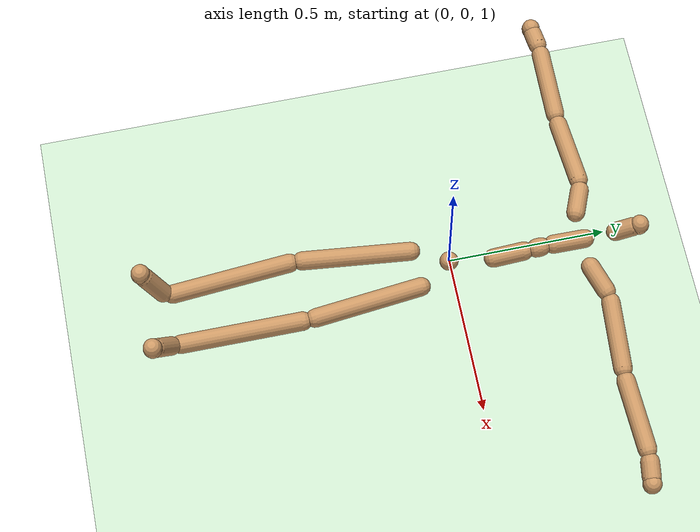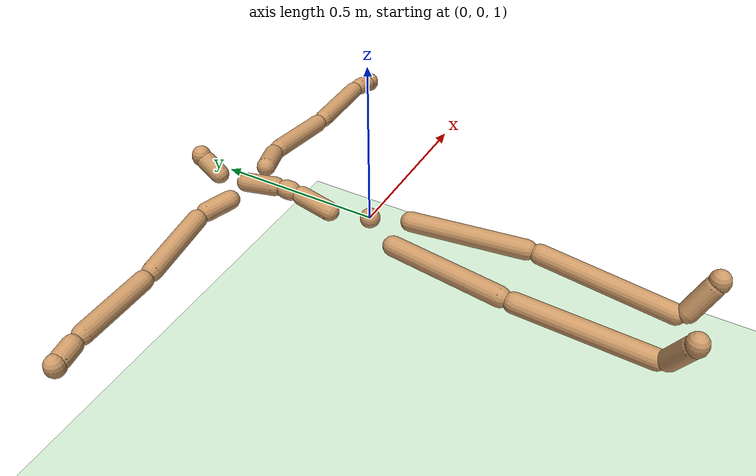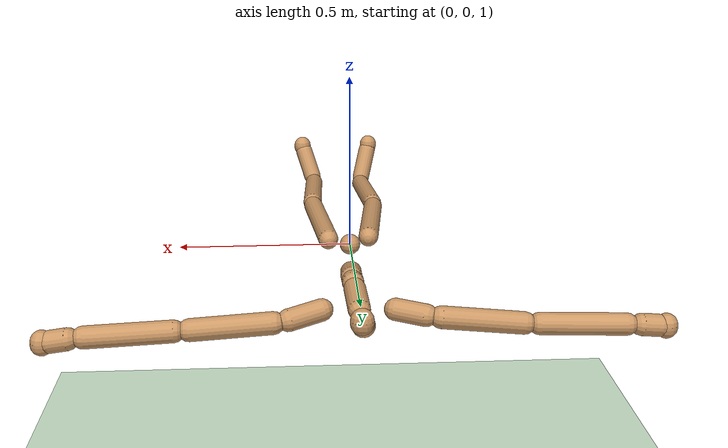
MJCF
<mujoco model="humanoid">
  <compiler angle="degree" inertiafromgeom="true" coordinate="global"/>
  <include file="./common/materials.xml"/>
    <size njmax="8000" nconmax="4000"/>
  <visual>
    <headlight ambient=".4 .4 .4" diffuse=".8 .8 .8" specular="0.1 0.1 0.1"/>
    <map znear=".01"/>
    <quality shadowsize="2048"/>
  </visual>
  <default>
    <joint damping="0.0" armature="0.01" stiffness="0.0" limited="true"/>
    <geom conaffinity="7" condim="1" contype="7" margin="0.001" material="self" rgba="0.8 0.6 .4 1"/>
  </default>
  <statistic extent="3" center="0 0 1"/>
  <option timestep="0.00222222222"/>
  <asset>
    <texture type="skybox" file="./common/sky1.png" gridsize="3 4" gridlayout=".U..LFRB.D.." width="8192" height="8192"/>
    <texture builtin="flat" height="1278" mark="cross" markrgb="1 1 1" name="texgeom" random="0.01" rgb1=".8 .6 .4" rgb2=".8 .6 .4" type="cube" width="127"/>
  </asset>
  <worldbody>
    <light cutoff="100" diffuse="1 1 1" dir="-0 0 -1.3" directional="true" exponent="1" pos="0 0 1.3" specular=".1 .1 .1"/>
    <geom condim="3" friction="1. .1 .1" material="grid" name="floor" pos="0 0 0" rgba=".8 .9 .8 1" size="100 100 .2" type="plane"/>
    <body name="Hips" pos="0.0000 0.0000 1.0000" user="0.0009 -0.0161 0.9768">
      <joint name="Hips" pos="0.0000 0.0000 1.0000" limited="false" type="free" armature="0" damping="0" stiffness="0"/>
      <geom size="0.0300" type="sphere" pos="0.0000 0.0000 1.0000"/>
      <body name="LeftUpLeg" pos="0.0586 -0.0823 0.9823" user="0.1020 -0.4687 0.9904">
        <joint name="LeftUpLeg_z" type="hinge" pos="0.0586 -0.0823 0.9823" axis="0.0000 0.0000 1.0000" range="-180.0000 180.0000"/>
        <joint name="LeftUpLeg_x" type="hinge" pos="0.0586 -0.0823 0.9823" axis="1.0000 0.0000 0.0000" range="-180.0000 180.0000"/>
        <joint name="LeftUpLeg_y" type="hinge" pos="0.0586 -0.0823 0.9823" axis="0.0000 1.0000 0.0000" range="-180.0000 180.0000"/>
        <geom size="0.0300" type="capsule" fromto="0.0608 -0.1022 0.9827 0.0998 -0.4489 0.9900"/>
        <body name="LeftLeg" pos="0.1020 -0.4687 0.9904" user="0.0872 -0.8956 0.9529">
          <joint name="LeftLeg_z" type="hinge" pos="0.1020 -0.4687 0.9904" axis="0.0000 0.0000 1.0000" range="-180.0000 180.0000"/>
          <joint name="LeftLeg_x" type="hinge" pos="0.1020 -0.4687 0.9904" axis="1.0000 0.0000 0.0000" range="-180.0000 180.0000"/>
          <joint name="LeftLeg_y" type="hinge" pos="0.1020 -0.4687 0.9904" axis="0.0000 1.0000 0.0000" range="-180.0000 180.0000"/>
          <geom size="0.0300" type="capsule" fromto="0.1013 -0.4887 0.9886 0.0879 -0.8757 0.9547"/>
          <body name="LeftFoot" pos="0.0872 -0.8956 0.9529" user="0.1283 -0.9559 1.0750">
            <joint name="LeftFoot_z" type="hinge" pos="0.0872 -0.8956 0.9529" axis="0.0000 0.0000 1.0000" range="-180.0000 180.0000"/>
            <joint name="LeftFoot_x" type="hinge" pos="0.0872 -0.8956 0.9529" axis="1.0000 0.0000 0.0000" range="-180.0000 180.0000"/>
            <joint name="LeftFoot_y" type="hinge" pos="0.0872 -0.8956 0.9529" axis="0.0000 1.0000 0.0000" range="-180.0000 180.0000"/>
            <geom size="0.0300" type="capsule" fromto="0.0930 -0.9041 0.9701 0.1225 -0.9474 1.0578"/>
            <body name="LeftToe" pos="0.1283 -0.9559 1.0750" user="0.1283 -0.9559 1.0750">
              <joint name="LeftToe_z" type="hinge" pos="0.1283 -0.9559 1.0750" axis="0.0000 0.0000 1.0000" range="-180.0000 180.0000"/>
              <joint name="LeftToe_x" type="hinge" pos="0.1283 -0.9559 1.0750" axis="1.0000 0.0000 0.0000" range="-180.0000 180.0000"/>
              <joint name="LeftToe_y" type="hinge" pos="0.1283 -0.9559 1.0750" axis="0.0000 1.0000 0.0000" range="-180.0000 180.0000"/>
              <geom size="0.0300" type="capsule" fromto="0.1283 -0.9559 1.0790 0.1283 -0.9559 1.0710"/>
            </body>
          </body>
        </body>
      </body>
      <body name="RightUpLeg" pos="-0.0603 -0.0905 0.9865" user="-0.1036 -0.4742 0.9816">
        <joint name="RightUpLeg_z" type="hinge" pos="-0.0603 -0.0905 0.9865" axis="0.0000 0.0000 1.0000" range="-180.0000 180.0000"/>
        <joint name="RightUpLeg_x" type="hinge" pos="-0.0603 -0.0905 0.9865" axis="1.0000 0.0000 0.0000" range="-180.0000 180.0000"/>
        <joint name="RightUpLeg_y" type="hinge" pos="-0.0603 -0.0905 0.9865" axis="0.0000 1.0000 0.0000" range="-180.0000 180.0000"/>
        <geom size="0.0300" type="capsule" fromto="-0.0626 -0.1104 0.9862 -0.1013 -0.4543 0.9819"/>
        <body name="RightLeg" pos="-0.1036 -0.4742 0.9816" user="-0.0845 -0.8942 0.9471">
          <joint name="RightLeg_z" type="hinge" pos="-0.1036 -0.4742 0.9816" axis="0.0000 0.0000 1.0000" range="-180.0000 180.0000"/>
          <joint name="RightLeg_x" type="hinge" pos="-0.1036 -0.4742 0.9816" axis="1.0000 0.0000 0.0000" range="-180.0000 180.0000"/>
          <joint name="RightLeg_y" type="hinge" pos="-0.1036 -0.4742 0.9816" axis="0.0000 1.0000 0.0000" range="-180.0000 180.0000"/>
          <geom size="0.0300" type="capsule" fromto="-0.1027 -0.4941 0.9800 -0.0854 -0.8743 0.9487"/>
          <body name="RightFoot" pos="-0.0845 -0.8942 0.9471" user="-0.1194 -0.9564 1.0774">
            <joint name="RightFoot_z" type="hinge" pos="-0.0845 -0.8942 0.9471" axis="0.0000 0.0000 1.0000" range="-180.0000 180.0000"/>
            <joint name="RightFoot_x" type="hinge" pos="-0.0845 -0.8942 0.9471" axis="1.0000 0.0000 0.0000" range="-180.0000 180.0000"/>
            <joint name="RightFoot_y" type="hinge" pos="-0.0845 -0.8942 0.9471" axis="0.0000 1.0000 0.0000" range="-180.0000 180.0000"/>
            <geom size="0.0300" type="capsule" fromto="-0.0892 -0.9026 0.9646 -0.1147 -0.9480 1.0598"/>
            <body name="RightToe" pos="-0.1194 -0.9564 1.0774" user="-0.1194 -0.9564 1.0774">
              <joint name="RightToe_z" type="hinge" pos="-0.1194 -0.9564 1.0774" axis="0.0000 0.0000 1.0000" range="-180.0000 180.0000"/>
              <joint name="RightToe_x" type="hinge" pos="-0.1194 -0.9564 1.0774" axis="1.0000 0.0000 0.0000" range="-180.0000 180.0000"/>
              <joint name="RightToe_y" type="hinge" pos="-0.1194 -0.9564 1.0774" axis="0.0000 1.0000 0.0000" range="-180.0000 180.0000"/>
              <geom size="0.0300" type="capsule" fromto="-0.1194 -0.9564 1.0814 -0.1194 -0.9564 1.0734"/>
            </body>
          </body>
        </body>
      </body>
      <body name="Spine" pos="0.0044 0.1244 0.9616" user="0.0089 0.2624 0.9884">
        <joint name="Spine_z" type="hinge" pos="0.0044 0.1244 0.9616" axis="0.0000 0.0000 1.0000" range="-180.0000 180.0000"/>
        <joint name="Spine_x" type="hinge" pos="0.0044 0.1244 0.9616" axis="1.0000 0.0000 0.0000" range="-180.0000 180.0000"/>
        <joint name="Spine_y" type="hinge" pos="0.0044 0.1244 0.9616" axis="0.0000 1.0000 0.0000" range="-180.0000 180.0000"/>
        <geom size="0.0300" type="capsule" fromto="0.0051 0.1440 0.9654 0.0083 0.2427 0.9846"/>
        <body name="Spine1" pos="0.0089 0.2624 0.9884" user="0.0067 0.3184 0.9913">
          <joint name="Spine1_z" type="hinge" pos="0.0089 0.2624 0.9884" axis="0.0000 0.0000 1.0000" range="-180.0000 180.0000"/>
          <joint name="Spine1_x" type="hinge" pos="0.0089 0.2624 0.9884" axis="1.0000 0.0000 0.0000" range="-180.0000 180.0000"/>
          <joint name="Spine1_y" type="hinge" pos="0.0089 0.2624 0.9884" axis="0.0000 1.0000 0.0000" range="-180.0000 180.0000"/>
          <geom size="0.0300" type="capsule" fromto="0.0081 0.2823 0.9895 0.0075 0.2984 0.9903"/>
          <body name="Spine2" pos="0.0067 0.3184 0.9913" user="-0.0016 0.4644 0.9659">
            <joint name="Spine2_z" type="hinge" pos="0.0067 0.3184 0.9913" axis="0.0000 0.0000 1.0000" range="-180.0000 180.0000"/>
            <joint name="Spine2_x" type="hinge" pos="0.0067 0.3184 0.9913" axis="1.0000 0.0000 0.0000" range="-180.0000 180.0000"/>
            <joint name="Spine2_y" type="hinge" pos="0.0067 0.3184 0.9913" axis="0.0000 1.0000 0.0000" range="-180.0000 180.0000"/>
            <geom size="0.0300" type="capsule" fromto="0.0056 0.3381 0.9879 -0.0004 0.4448 0.9693"/>
            <body name="Neck" pos="-0.0067 0.5300 0.9578" user="0.0034 0.6190 1.0082">
              <joint name="Neck_z" type="hinge" pos="-0.0067 0.5300 0.9578" axis="0.0000 0.0000 1.0000" range="-180.0000 180.0000"/>
              <joint name="Neck_x" type="hinge" pos="-0.0067 0.5300 0.9578" axis="1.0000 0.0000 0.0000" range="-180.0000 180.0000"/>
              <joint name="Neck_y" type="hinge" pos="-0.0067 0.5300 0.9578" axis="0.0000 1.0000 0.0000" range="-180.0000 180.0000"/>
              <geom size="0.0300" type="capsule" fromto="-0.0048 0.5473 0.9676 0.0014 0.6017 0.9984"/>
              <body name="Mouth" pos="0.0034 0.6190 1.0082" user="0.0034 0.6190 1.0082">
                <joint name="Mouth_z" type="hinge" pos="0.0034 0.6190 1.0082" axis="0.0000 0.0000 1.0000" range="-180.0000 180.0000"/>
                <joint name="Mouth_x" type="hinge" pos="0.0034 0.6190 1.0082" axis="1.0000 0.0000 0.0000" range="-180.0000 180.0000"/>
                <joint name="Mouth_y" type="hinge" pos="0.0034 0.6190 1.0082" axis="0.0000 1.0000 0.0000" range="-180.0000 180.0000"/>
                <geom size="0.0300" type="capsule" fromto="0.0034 0.6190 1.0122 0.0034 0.6190 1.0042"/>
              </body>
            </body>
            <body name="LeftChest" pos="0.0784 0.4324 0.9724" user="0.2013 0.4776 0.9533">
              <joint name="LeftChest_z" type="hinge" pos="0.0784 0.4324 0.9724" axis="0.0000 0.0000 1.0000" range="-180.0000 180.0000"/>
              <joint name="LeftChest_x" type="hinge" pos="0.0784 0.4324 0.9724" axis="1.0000 0.0000 0.0000" range="-180.0000 180.0000"/>
              <joint name="LeftChest_y" type="hinge" pos="0.0784 0.4324 0.9724" axis="0.0000 1.0000 0.0000" range="-180.0000 180.0000"/>
              <geom size="0.0300" type="capsule" fromto="0.0969 0.4392 0.9695 0.1827 0.4708 0.9562"/>
              <body name="LeftShoulder" pos="0.2013 0.4776 0.9533" user="0.4566 0.4619 0.9304">
                <joint name="LeftShoulder_z" type="hinge" pos="0.2013 0.4776 0.9533" axis="0.0000 0.0000 1.0000" range="-180.0000 180.0000"/>
                <joint name="LeftShoulder_x" type="hinge" pos="0.2013 0.4776 0.9533" axis="1.0000 0.0000 0.0000" range="-180.0000 180.0000"/>
                <joint name="LeftShoulder_y" type="hinge" pos="0.2013 0.4776 0.9533" axis="0.0000 1.0000 0.0000" range="-180.0000 180.0000"/>
                <geom size="0.0300" type="capsule" fromto="0.2212 0.4764 0.9516 0.4367 0.4632 0.9322"/>
                <body name="LeftArm" pos="0.4566 0.4619 0.9304" user="0.7223 0.4746 0.9230">
                  <joint name="LeftArm_z" type="hinge" pos="0.4566 0.4619 0.9304" axis="0.0000 0.0000 1.0000" range="-180.0000 180.0000"/>
                  <joint name="LeftArm_x" type="hinge" pos="0.4566 0.4619 0.9304" axis="1.0000 0.0000 0.0000" range="-180.0000 180.0000"/>
                  <joint name="LeftArm_y" type="hinge" pos="0.4566 0.4619 0.9304" axis="0.0000 1.0000 0.0000" range="-180.0000 180.0000"/>
                  <geom size="0.0300" type="capsule" fromto="0.4766 0.4629 0.9298 0.7024 0.4737 0.9236"/>
                  <body name="LeftWrist" pos="0.7223 0.4746 0.9230" user="0.8090 0.4640 0.9074">
                    <joint name="LeftWrist_z" type="hinge" pos="0.7223 0.4746 0.9230" axis="0.0000 0.0000 1.0000" range="-180.0000 180.0000"/>
                    <joint name="LeftWrist_x" type="hinge" pos="0.7223 0.4746 0.9230" axis="1.0000 0.0000 0.0000" range="-180.0000 180.0000"/>
                    <joint name="LeftWrist_y" type="hinge" pos="0.7223 0.4746 0.9230" axis="0.0000 1.0000 0.0000" range="-180.0000 180.0000"/>
                    <geom size="0.0300" type="capsule" fromto="0.7419 0.4722 0.9195 0.7895 0.4664 0.9109"/>
                    <body name="LeftHand" pos="0.8090 0.4640 0.9074" user="0.8090 0.4640 0.9074">
                      <joint name="LeftHand_z" type="hinge" pos="0.8090 0.4640 0.9074" axis="0.0000 0.0000 1.0000" range="-180.0000 180.0000"/>
                      <joint name="LeftHand_x" type="hinge" pos="0.8090 0.4640 0.9074" axis="1.0000 0.0000 0.0000" range="-180.0000 180.0000"/>
                      <joint name="LeftHand_y" type="hinge" pos="0.8090 0.4640 0.9074" axis="0.0000 1.0000 0.0000" range="-180.0000 180.0000"/>
                      <geom size="0.0300" type="capsule" fromto="0.8090 0.4640 0.9114 0.8090 0.4640 0.9034"/>
                    </body>
                  </body>
                </body>
              </body>
            </body>
            <body name="RightChest" pos="-0.0763 0.4309 0.9676" user="-0.1895 0.4777 0.9591">
              <joint name="RightChest_z" type="hinge" pos="-0.0763 0.4309 0.9676" axis="0.0000 0.0000 1.0000" range="-180.0000 180.0000"/>
              <joint name="RightChest_x" type="hinge" pos="-0.0763 0.4309 0.9676" axis="1.0000 0.0000 0.0000" range="-180.0000 180.0000"/>
              <joint name="RightChest_y" type="hinge" pos="-0.0763 0.4309 0.9676" axis="0.0000 1.0000 0.0000" range="-180.0000 180.0000"/>
              <geom size="0.0300" type="capsule" fromto="-0.0947 0.4385 0.9662 -0.1711 0.4701 0.9605"/>
              <body name="RightShoulder" pos="-0.1895 0.4777 0.9591" user="-0.4496 0.4633 0.9278">
                <joint name="RightShoulder_z" type="hinge" pos="-0.1895 0.4777 0.9591" axis="0.0000 0.0000 1.0000" range="-180.0000 180.0000"/>
                <joint name="RightShoulder_x" type="hinge" pos="-0.1895 0.4777 0.9591" axis="1.0000 0.0000 0.0000" range="-180.0000 180.0000"/>
                <joint name="RightShoulder_y" type="hinge" pos="-0.1895 0.4777 0.9591" axis="0.0000 1.0000 0.0000" range="-180.0000 180.0000"/>
                <geom size="0.0300" type="capsule" fromto="-0.2093 0.4766 0.9567 -0.4298 0.4644 0.9302"/>
                <body name="RightArm" pos="-0.4496 0.4633 0.9278" user="-0.7188 0.4701 0.9218">
                  <joint name="RightArm_z" type="hinge" pos="-0.4496 0.4633 0.9278" axis="0.0000 0.0000 1.0000" range="-180.0000 180.0000"/>
                  <joint name="RightArm_x" type="hinge" pos="-0.4496 0.4633 0.9278" axis="1.0000 0.0000 0.0000" range="-180.0000 180.0000"/>
                  <joint name="RightArm_y" type="hinge" pos="-0.4496 0.4633 0.9278" axis="0.0000 1.0000 0.0000" range="-180.0000 180.0000"/>
                  <geom size="0.0300" type="capsule" fromto="-0.4696 0.4639 0.9274 -0.6988 0.4696 0.9223"/>
                  <body name="RightWrist" pos="-0.7188 0.4701 0.9218" user="-0.8075 0.4615 0.9117">
                    <joint name="RightWrist_z" type="hinge" pos="-0.7188 0.4701 0.9218" axis="0.0000 0.0000 1.0000" range="-180.0000 180.0000"/>
                    <joint name="RightWrist_x" type="hinge" pos="-0.7188 0.4701 0.9218" axis="1.0000 0.0000 0.0000" range="-180.0000 180.0000"/>
                    <joint name="RightWrist_y" type="hinge" pos="-0.7188 0.4701 0.9218" axis="0.0000 1.0000 0.0000" range="-180.0000 180.0000"/>
                    <geom size="0.0300" type="capsule" fromto="-0.7385 0.4682 0.9196 -0.7877 0.4634 0.9140"/>
                    <body name="RightHand" pos="-0.8075 0.4615 0.9117" user="-0.8075 0.4615 0.9117">
                      <joint name="RightHand_z" type="hinge" pos="-0.8075 0.4615 0.9117" axis="0.0000 0.0000 1.0000" range="-180.0000 180.0000"/>
                      <joint name="RightHand_x" type="hinge" pos="-0.8075 0.4615 0.9117" axis="1.0000 0.0000 0.0000" range="-180.0000 180.0000"/>
                      <joint name="RightHand_y" type="hinge" pos="-0.8075 0.4615 0.9117" axis="0.0000 1.0000 0.0000" range="-180.0000 180.0000"/>
                      <geom size="0.0300" type="capsule" fromto="-0.8075 0.4615 0.9157 -0.8075 0.4615 0.9077"/>
                    </body>
                  </body>
                </body>
              </body>
            </body>
          </body>
        </body>
      </body>
    </body>
  </worldbody>
  <actuator>
    <motor name="LeftUpLeg_z" joint="LeftUpLeg_z" gear="1"/>
    <motor name="LeftUpLeg_x" joint="LeftUpLeg_x" gear="1"/>
    <motor name="LeftUpLeg_y" joint="LeftUpLeg_y" gear="1"/>
    <motor name="LeftLeg_z" joint="LeftLeg_z" gear="1"/>
    <motor name="LeftLeg_x" joint="LeftLeg_x" gear="1"/>
    <motor name="LeftLeg_y" joint="LeftLeg_y" gear="1"/>
    <motor name="LeftFoot_z" joint="LeftFoot_z" gear="1"/>
    <motor name="LeftFoot_x" joint="LeftFoot_x" gear="1"/>
    <motor name="LeftFoot_y" joint="LeftFoot_y" gear="1"/>
    <motor name="LeftToe_z" joint="LeftToe_z" gear="1"/>
    <motor name="LeftToe_x" joint="LeftToe_x" gear="1"/>
    <motor name="LeftToe_y" joint="LeftToe_y" gear="1"/>
    <motor name="RightUpLeg_z" joint="RightUpLeg_z" gear="1"/>
    <motor name="RightUpLeg_x" joint="RightUpLeg_x" gear="1"/>
    <motor name="RightUpLeg_y" joint="RightUpLeg_y" gear="1"/>
    <motor name="RightLeg_z" joint="RightLeg_z" gear="1"/>
    <motor name="RightLeg_x" joint="RightLeg_x" gear="1"/>
    <motor name="RightLeg_y" joint="RightLeg_y" gear="1"/>
    <motor name="RightFoot_z" joint="RightFoot_z" gear="1"/>
    <motor name="RightFoot_x" joint="RightFoot_x" gear="1"/>
    <motor name="RightFoot_y" joint="RightFoot_y" gear="1"/>
    <motor name="RightToe_z" joint="RightToe_z" gear="1"/>
    <motor name="RightToe_x" joint="RightToe_x" gear="1"/>
    <motor name="RightToe_y" joint="RightToe_y" gear="1"/>
    <motor name="Spine_z" joint="Spine_z" gear="1"/>
    <motor name="Spine_x" joint="Spine_x" gear="1"/>
    <motor name="Spine_y" joint="Spine_y" gear="1"/>
    <motor name="Spine1_z" joint="Spine1_z" gear="1"/>
    <motor name="Spine1_x" joint="Spine1_x" gear="1"/>
    <motor name="Spine1_y" joint="Spine1_y" gear="1"/>
    <motor name="Spine2_z" joint="Spine2_z" gear="1"/>
    <motor name="Spine2_x" joint="Spine2_x" gear="1"/>
    <motor name="Spine2_y" joint="Spine2_y" gear="1"/>
    <motor name="Neck_z" joint="Neck_z" gear="1"/>
    <motor name="Neck_x" joint="Neck_x" gear="1"/>
    <motor name="Neck_y" joint="Neck_y" gear="1"/>
    <motor name="Mouth_z" joint="Mouth_z" gear="1"/>
    <motor name="Mouth_x" joint="Mouth_x" gear="1"/>
    <motor name="Mouth_y" joint="Mouth_y" gear="1"/>
    <motor name="LeftChest_z" joint="LeftChest_z" gear="1"/>
    <motor name="LeftChest_x" joint="LeftChest_x" gear="1"/>
    <motor name="LeftChest_y" joint="LeftChest_y" gear="1"/>
    <motor name="LeftShoulder_z" joint="LeftShoulder_z" gear="1"/>
    <motor name="LeftShoulder_x" joint="LeftShoulder_x" gear="1"/>
    <motor name="LeftShoulder_y" joint="LeftShoulder_y" gear="1"/>
    <motor name="LeftArm_z" joint="LeftArm_z" gear="1"/>
    <motor name="LeftArm_x" joint="LeftArm_x" gear="1"/>
    <motor name="LeftArm_y" joint="LeftArm_y" gear="1"/>
    <motor name="LeftWrist_z" joint="LeftWrist_z" gear="1"/>
    <motor name="LeftWrist_x" joint="LeftWrist_x" gear="1"/>
    <motor name="LeftWrist_y" joint="LeftWrist_y" gear="1"/>
    <motor name="LeftHand_z" joint="LeftHand_z" gear="1"/>
    <motor name="LeftHand_x" joint="LeftHand_x" gear="1"/>
    <motor name="LeftHand_y" joint="LeftHand_y" gear="1"/>
    <motor name="RightChest_z" joint="RightChest_z" gear="1"/>
    <motor name="RightChest_x" joint="RightChest_x" gear="1"/>
    <motor name="RightChest_y" joint="RightChest_y" gear="1"/>
    <motor name="RightShoulder_z" joint="RightShoulder_z" gear="1"/>
    <motor name="RightShoulder_x" joint="RightShoulder_x" gear="1"/>
    <motor name="RightShoulder_y" joint="RightShoulder_y" gear="1"/>
    <motor name="RightArm_z" joint="RightArm_z" gear="1"/>
    <motor name="RightArm_x" joint="RightArm_x" gear="1"/>
    <motor name="RightArm_y" joint="RightArm_y" gear="1"/>
    <motor name="RightWrist_z" joint="RightWrist_z" gear="1"/>
    <motor name="RightWrist_x" joint="RightWrist_x" gear="1"/>
    <motor name="RightWrist_y" joint="RightWrist_y" gear="1"/>
    <motor name="RightHand_z" joint="RightHand_z" gear="1"/>
    <motor name="RightHand_x" joint="RightHand_x" gear="1"/>
    <motor name="RightHand_y" joint="RightHand_y" gear="1"/>
  </actuator>
</mujoco>

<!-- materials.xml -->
<!--
Common textures, colors and materials to be used throughout this suite. Some
materials such as xxx_highlight are activated on occurence of certain events,
for example receiving a positive reward.
-->
<mujoco>
  <asset>
    <texture name="grid" type="2d" builtin="checker" rgb1=".1 .2 .3" rgb2=".2 .3 .4" width="300" height="300" mark="edge" markrgb=".2 .3 .4"/>
    <material name="grid" texture="grid" texrepeat="1 1" texuniform="true" reflectance=".2"/>
    <texture builtin="checker" height="100" name="texplane" rgb1="0 0 0" rgb2=".8 .8 .8" type="2d" width="100"/>
    <texture name="grass" file="./common/grass.png" type="2d"/>

    <texture name="grid_new" type="2d" builtin="checker" rgb1=".1 .3 .2" rgb2=".2 .4 .3" width="1000" height="1000" mark="none" markrgb=".8 .6 .4"/>
    <material name="grid_new" texture="grid_new" texrepeat="0.2 0.2" texuniform="true" reflectance=".2"/>
    <material name="MatPlane" reflectance="0.5" shininess="1" specular="1" texrepeat="60 60" texture="texplane"/>
    <material name="GrassPlane" reflectance="0.0" shininess="1" specular="1" texrepeat="400 400" texture="grass"/>
    <material name="self" rgba=".7 .5 .3 1"/>
    <material name="self_default" rgba=".7 .5 .3 1"/>
    <material name="self_highlight" rgba="0 .5 .3 1"/>
    <material name="effector" rgba=".7 .4 .2 1"/>
    <material name="effector_default" rgba=".7 .4 .2 1"/>
    <material name="effector_highlight" rgba="0 .5 .3 1"/>
    <material name="decoration" rgba=".3 .5 .7 1"/>
    <material name="eye" rgba="0 .2 1 1"/>
    <material name="target" rgba=".6 .3 .3 1"/>
    <material name="target_default" rgba=".6 .3 .3 1"/>
    <material name="target_highlight" rgba=".6 .3 .3 .4"/>
    <material name="expert" rgba=".6 .3 .3 .4"/>
  </asset>
</mujoco>
